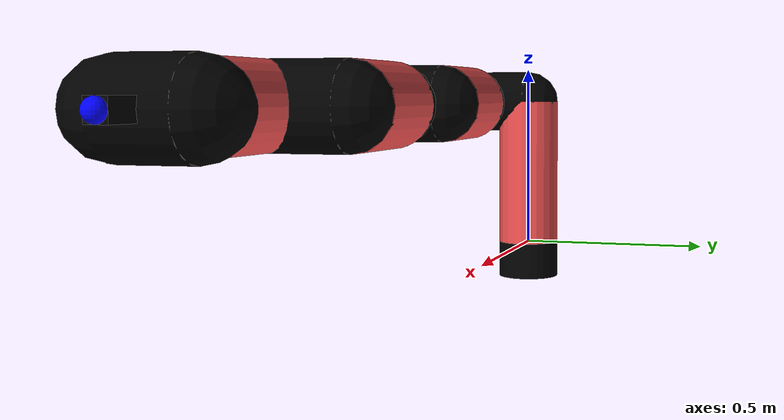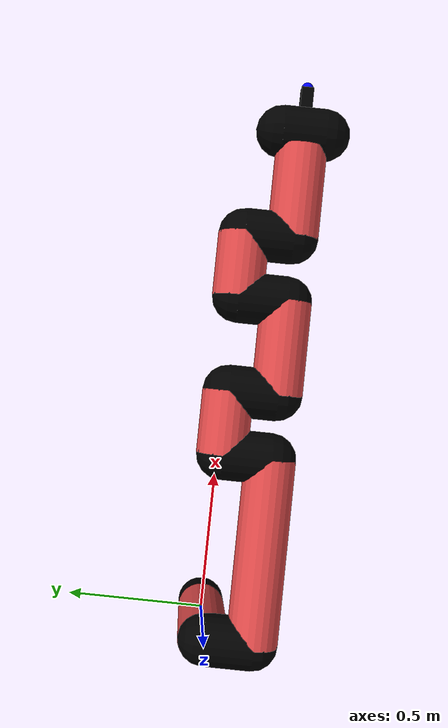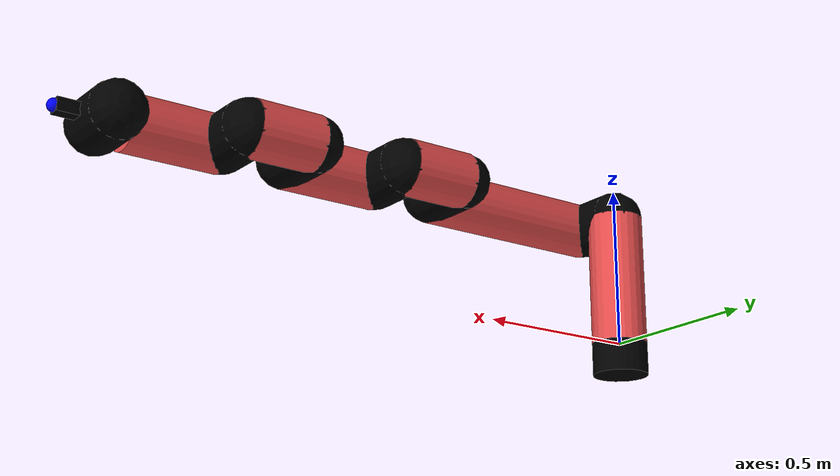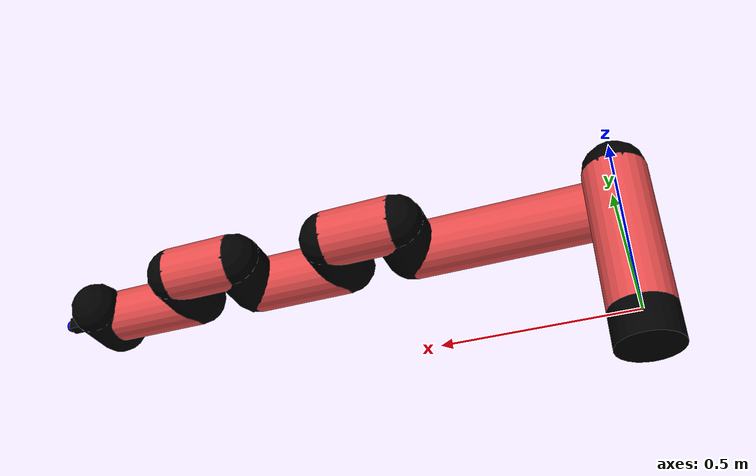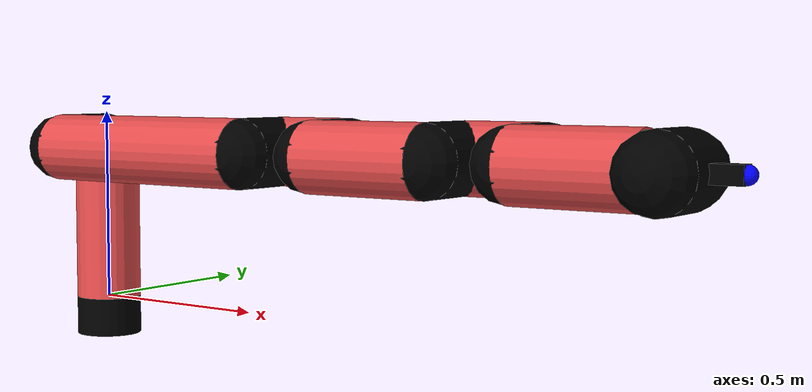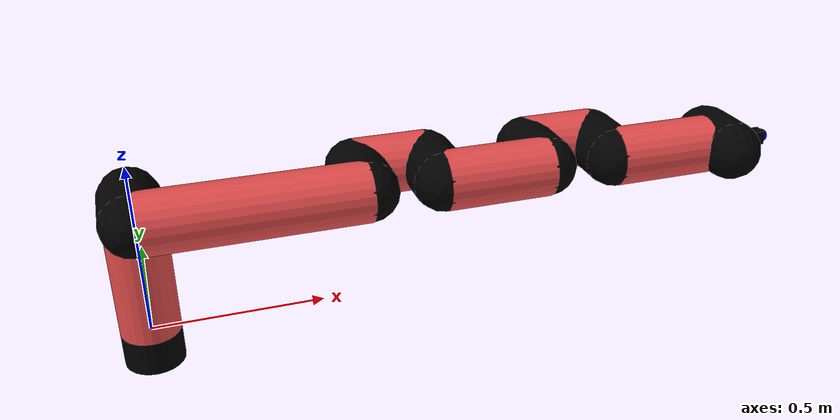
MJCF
<mujoco model="manipulator">
		<compiler angle="degree" coordinate="local" inertiafromgeom="auto" meshdir="meshes/"/>
		<option gravity="0 0 0" integrator="RK4" iterations="30" timestep="0.01"/>

		<default>
		<joint armature="1" limited="true" stiffness="10" damping="15" frictionloss="5.0"/>
		<geom conaffinity="1" condim="3" contype="1" friction=".5 .1 .1" margin="0.002"/>
		<motor ctrllimited="true"/>
		<position ctrllimited="true"/>
		</default>

		<asset>
		<texture builtin="gradient" height="100" rgb1="1.0 1.0 1.0" rgb2="1.0 1.0 1.0" type="skybox" width="100"/>
		<texture builtin="flat" height="32" name="arm_tex" rgb1="0.9 0.3 0.3" type="2d" width="32"/>
		<texture builtin="flat" height="32" name="gripper_tex" rgb1="0.0 0.0 0.0" type="cube" width="32"/>

		<material name="arm_mat" shininess="0.1" specular="0.1" texture="arm_tex"/>
		<material name="gripper_mat" shininess="1" specular="1" texture="gripper_tex"/>
		</asset>

		<worldbody>
		<light cutoff="45" diffuse=".8 .8 .8" dir="0 0.16 -1" directional="false" name="light" pos="0 -2.0 8.0" specular="0.3 0.3 0.3"/>

		<body name="base_link" pos="0 0 -0.1">
		<geom fromto="0 0 0 0 0 0.1" material="arm_mat" name="base_link" rgba="0.0 0.0 0.0 1" size="0.085" type="cylinder"/>
		</body>

		<body name="l1" pos="0 0 0">
<geom fromto="0 0 0 0 0 0.41" material="arm_mat" name="l1" rgba="0.9 0.3 0.3 1" size="0.085" type="cylinder"/>
<geom fromto="0 0 0.41 0 -0.16 0.41" material="arm_mat" name="l1_ex" rgba="0.0 0.0 0.0 1" size="0.085" type="capsule"/>
<joint axis="0 0 1" name="j1" pos="0 0 0" range="-90 90" damping="31.09" frictionloss="9.93"/>

<body name="l2" pos="0 -0.16 0.41">
<geom fromto="0 0 0 0.61 0 0" material="arm_mat" name="l2" rgba="0.9 0.3 0.3 1" size="0.085" type="cylinder"/>
<geom fromto="0.61 0 0 0.61 0.16 0" material="arm_mat" name="l2_ex" rgba="0.0 0.0 0.0 1" size="0.085" type="capsule"/>
<joint axis="0.0 1.0 0.0" name="j2" pos="0 0 0" range="-90 60" damping="31.69" frictionloss="9.07"/>

<body name="l3" pos="0.61 0.16 0">
<geom fromto="0 0 0 0.21 0 0" material="arm_mat" name="l3" rgba="0.9 0.3 0.3 1" size="0.085" type="cylinder"/>
<geom fromto="0.21 0 0 0.21 -0.16 0" material="arm_mat" name="l3_ex" rgba="0.0 0.0 0.0 1" size="0.085" type="capsule"/>
<joint axis="0.0 1.0 0.0" name="j3" pos="0 0 0" range="-30 60" damping="37.38" frictionloss="6.94"/>

<body name="l4" pos="0.21 -0.16 0">
<geom fromto="0 0 0 0.31 0 0" material="arm_mat" name="l4" rgba="0.9 0.3 0.3 1" size="0.085" type="cylinder"/>
<geom fromto="0.31 0 0 0.31 0.16 0" material="arm_mat" name="l4_ex" rgba="0.0 0.0 0.0 1" size="0.085" type="capsule"/>
<joint axis="0.0 1.0 0.0" name="j4" pos="0 0 0" range="-30 60" damping="41.16" frictionloss="12.09"/>

<body name="l5" pos="0.31 0.16 0">
<geom fromto="0 0 0 0.21 0 0" material="arm_mat" name="l5" rgba="0.9 0.3 0.3 1" size="0.085" type="cylinder"/>
<geom fromto="0.21 0 0 0.21 -0.16 0" material="arm_mat" name="l5_ex" rgba="0.0 0.0 0.0 1" size="0.085" type="capsule"/>
<joint axis="0.0 1.0 0.0" name="j5" pos="0 0 0" range="-30 60" damping="30.01" frictionloss="10.58"/>

<body name="l6" pos="0.21 -0.16 0">
<geom fromto="0 0 0 0.3 0 0" material="arm_mat" name="l6" rgba="0.9 0.3 0.3 1" size="0.085" type="cylinder"/>
<joint axis="0.0 1.0 0.0" name="j6" pos="0 0 0" range="-30 60" damping="26.56" frictionloss="10.23"/>

<body name="gripper" pos="0.3 0 0">
<geom fromto="0.05 -0.07 0 0.05 0.07 0" material="gripper_mat" name="gripper" rgba="0.0 0.0 0.0 1" size="0.085" type="capsule"/><joint axis="1 0 0" name="j7" pos="0 0 0" range="-90 90" damping="15" frictionloss="5.0"/><body name="finger" pos="0.1 0 0">
<geom fromto="0 0.0 0 0.1 0.0 0" material="gripper_mat" name="finger" rgba="0.0 0.0 0.0 1" size="0.020 0.06 0.06" type="box"/>
</body>
<site name="current" pos="0.2 0. 0.0" rgba="0. 0. 1.0 1" size="0.02" type="sphere"/>
</body>
</body>
</body>
</body>
</body>
</body>
</body>
</worldbody>
<actuator>
<motor ctrllimited="true" ctrlrange="-1.0 1.0" joint="j1" gear="102.76"/>
<motor ctrllimited="true" ctrlrange="-1.0 1.0" joint="j2" gear="66.18"/>
<motor ctrllimited="true" ctrlrange="-1.0 1.0" joint="j3" gear="95.82"/>
<motor ctrllimited="true" ctrlrange="-1.0 1.0" joint="j4" gear="110.31"/>
<motor ctrllimited="true" ctrlrange="-1.0 1.0" joint="j5" gear="67.92"/>
<motor ctrllimited="true" ctrlrange="-1.0 1.0" joint="j6" gear="48.05"/>
<motor ctrllimited="true" ctrlrange="-1.0 1.0" joint="j7" gear="80"/>
</actuator>
</mujoco>
